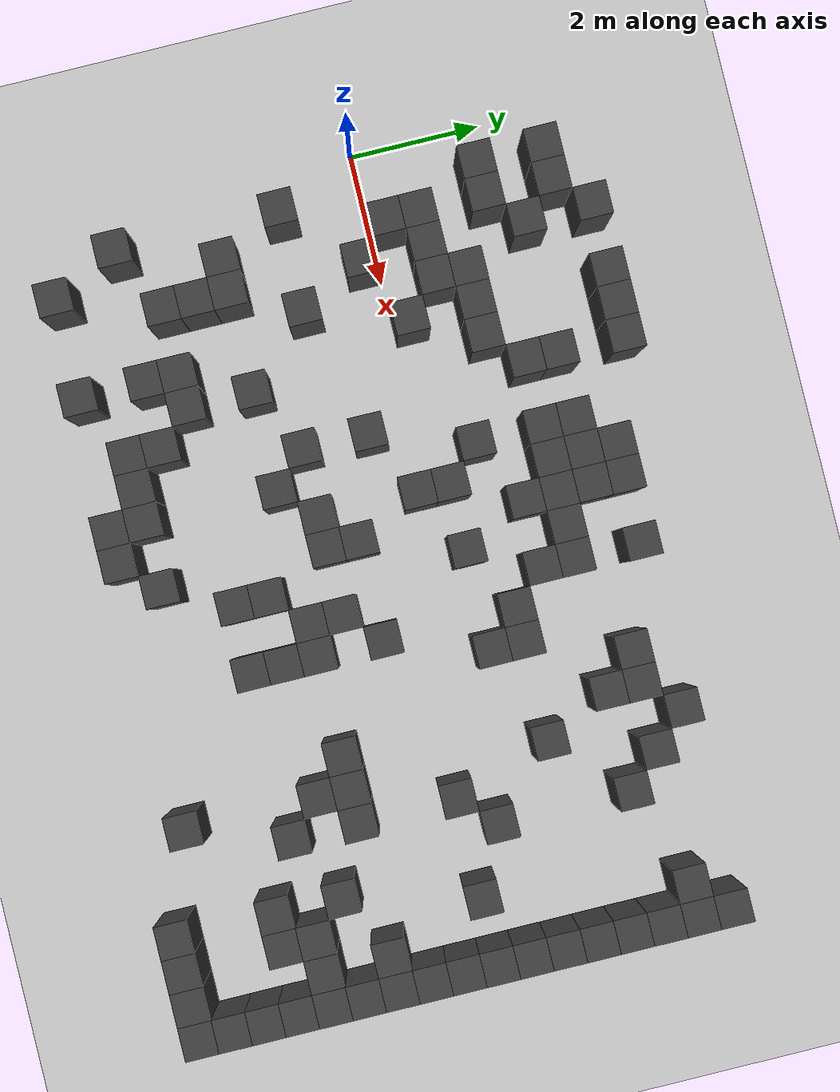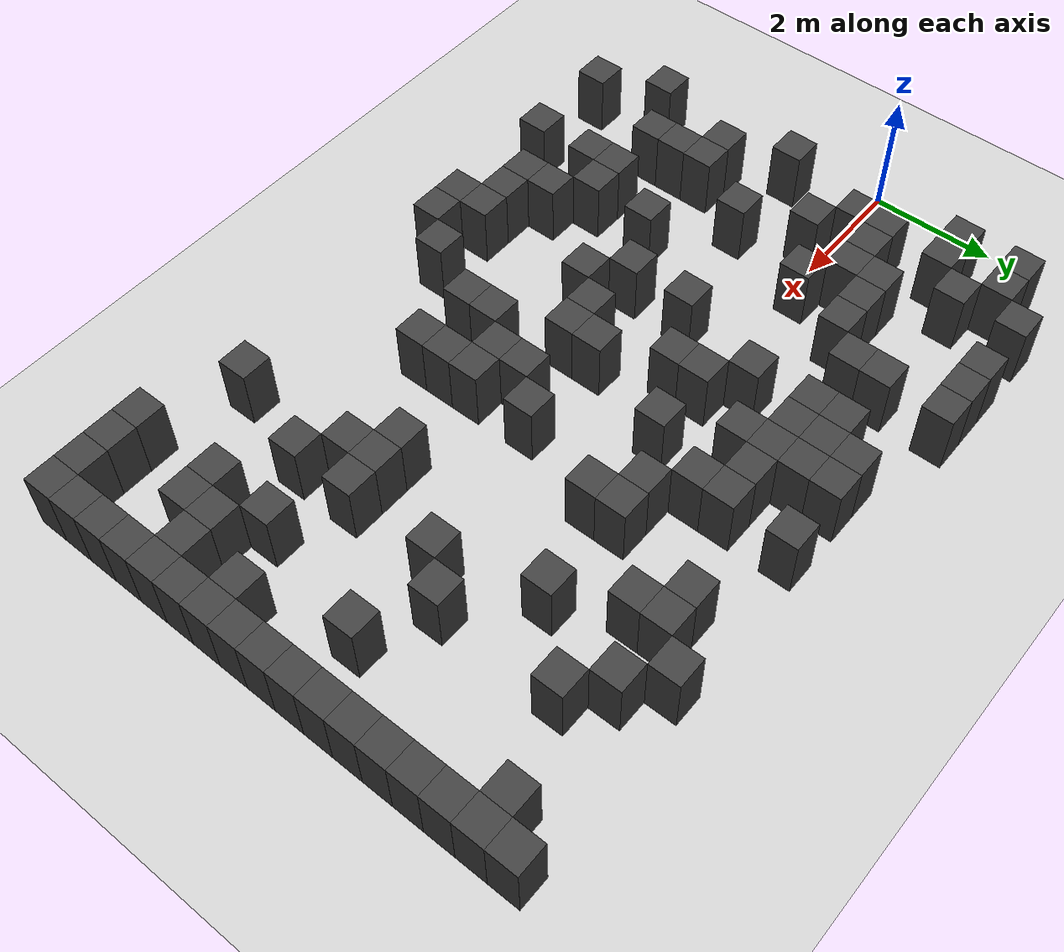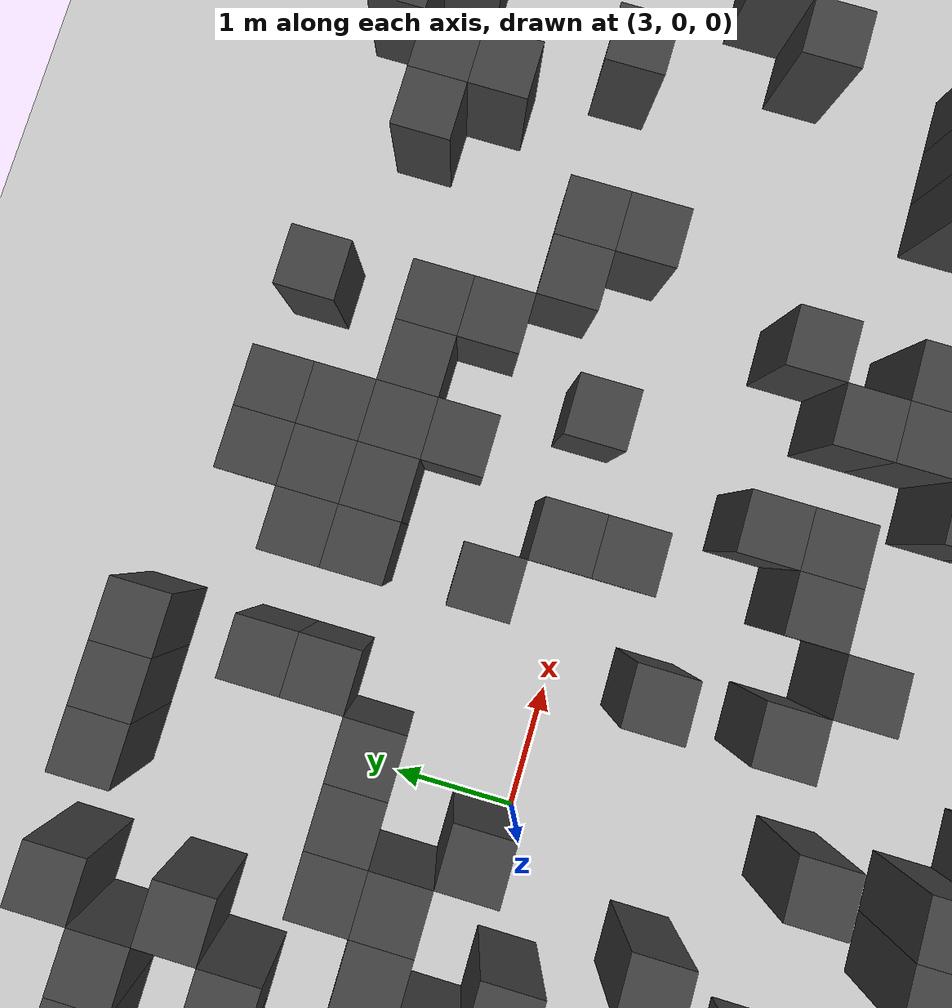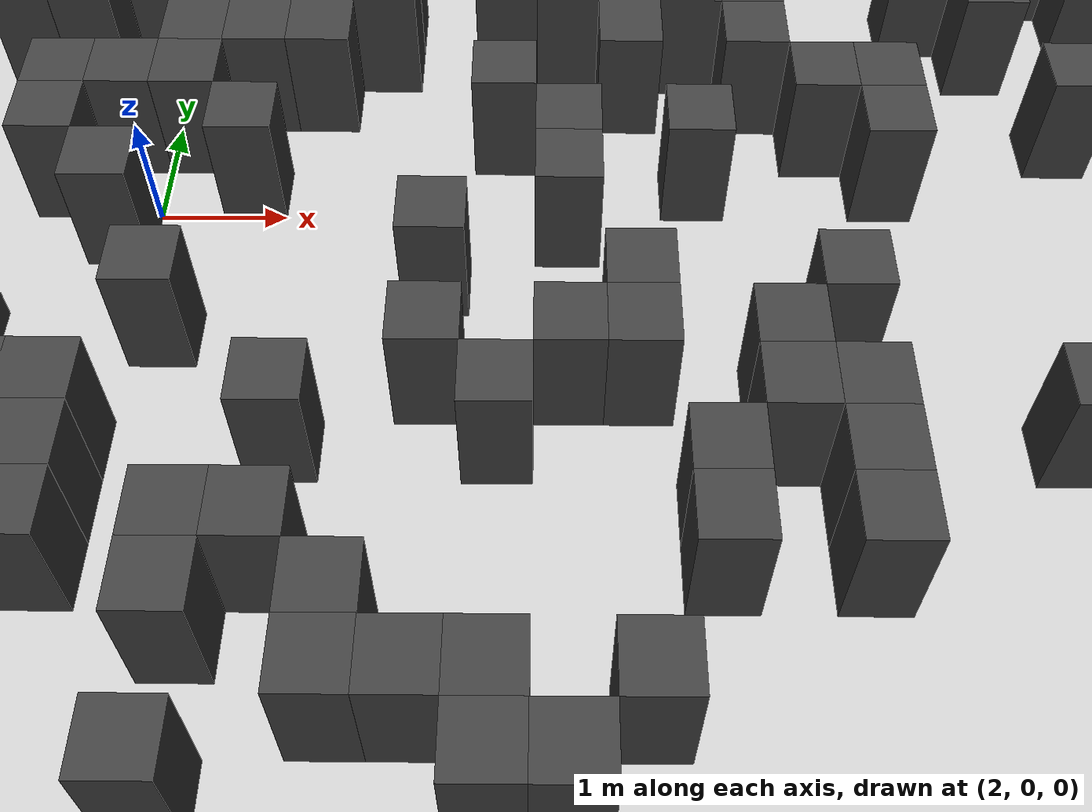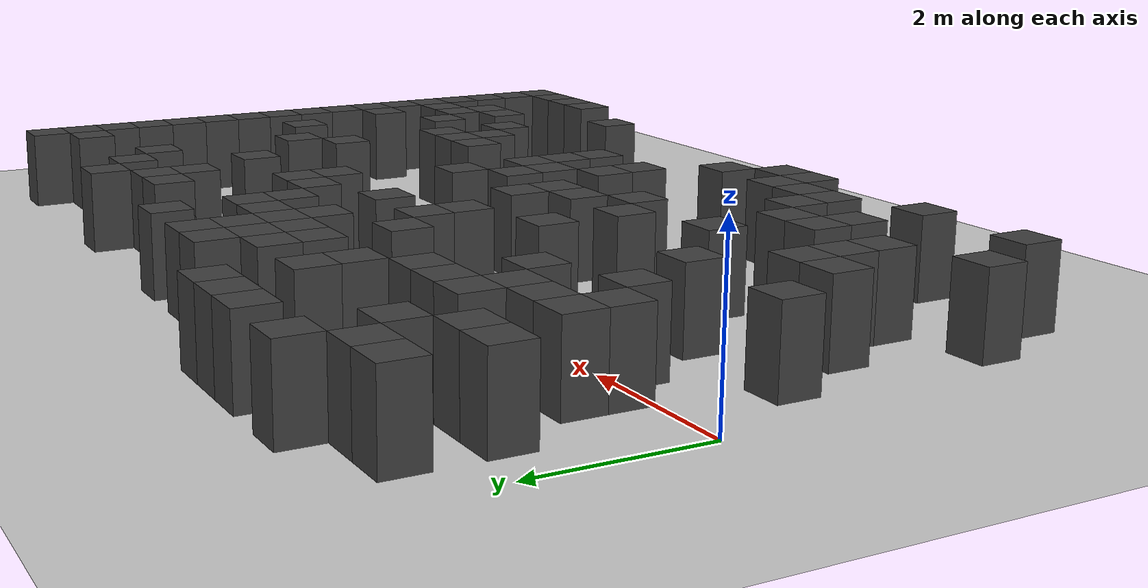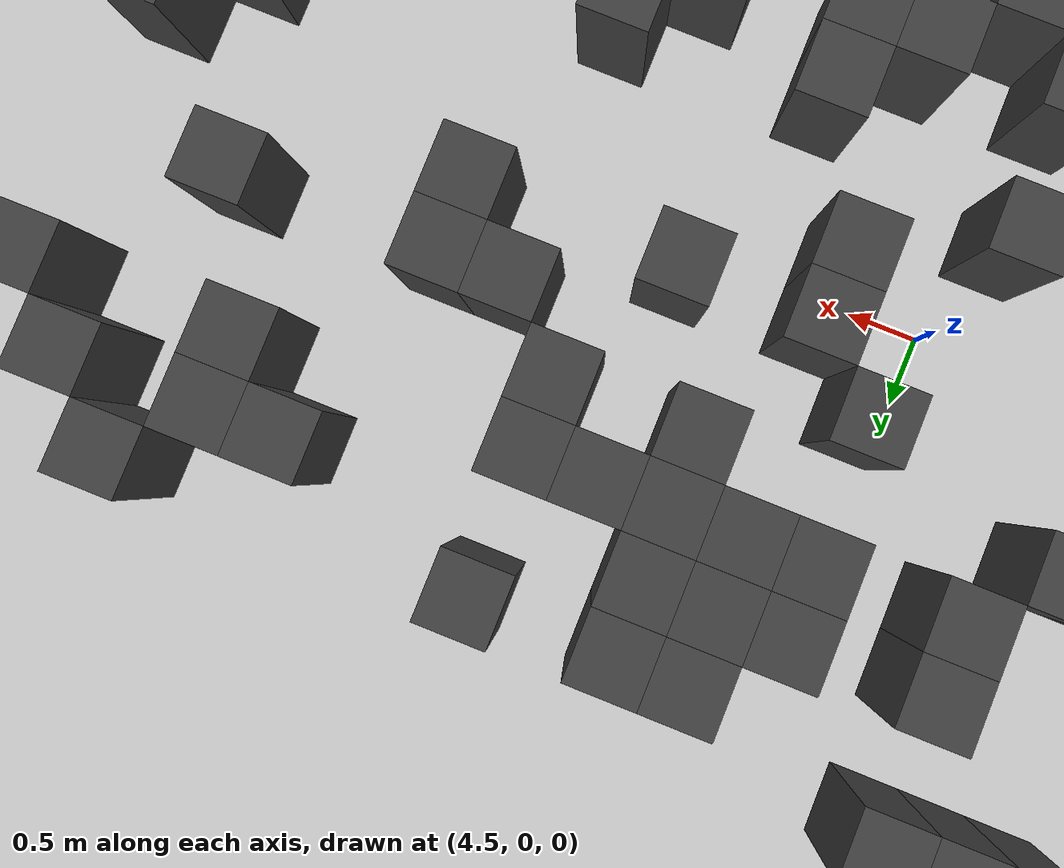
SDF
<sdf version="1.7">
 <world name="map_4581">
  <model name="ground_plane">
   <static>true</static>
   <link name="link">
    <collision name="collision">
     <geometry><plane><normal>0 0 1</normal><size>200 200</size></plane></geometry>
    </collision>
    <visual name="visual">
     <geometry><plane><normal>0 0 1</normal><size>200 200</size></plane></geometry>
     <material><ambient>0.8 0.8 0.8 1</ambient><diffuse>0.8 0.8 0.8 1</diffuse></material>
    </visual>
   </link>
  </model>
  <model name="maze_environment">
   <static>true</static>
   <link name="wall_261">
    <pose>1.750 3.250 0.500 0 0 0</pose>
    <collision name="col"><geometry><box><size>0.5 0.5 1.0</size></box></geometry></collision>
    <visual name="vis">
     <geometry><box><size>0.5 0.5 1.0</size></box></geometry>
     <material><ambient>0.15 0.15 0.15 1</ambient><diffuse>0.25 0.25 0.25 1</diffuse></material>
    </visual>
   </link>
   <link name="wall_262">
    <pose>2.750 3.250 0.500 0 0 0</pose>
    <collision name="col"><geometry><box><size>0.5 0.5 1.0</size></box></geometry></collision>
    <visual name="vis">
     <geometry><box><size>0.5 0.5 1.0</size></box></geometry>
     <material><ambient>0.15 0.15 0.15 1</ambient><diffuse>0.25 0.25 0.25 1</diffuse></material>
    </visual>
   </link>
   <link name="wall_263">
    <pose>3.250 3.250 0.500 0 0 0</pose>
    <collision name="col"><geometry><box><size>0.5 0.5 1.0</size></box></geometry></collision>
    <visual name="vis">
     <geometry><box><size>0.5 0.5 1.0</size></box></geometry>
     <material><ambient>0.15 0.15 0.15 1</ambient><diffuse>0.25 0.25 0.25 1</diffuse></material>
    </visual>
   </link>
   <link name="wall_264">
    <pose>3.750 3.250 0.500 0 0 0</pose>
    <collision name="col"><geometry><box><size>0.5 0.5 1.0</size></box></geometry></collision>
    <visual name="vis">
     <geometry><box><size>0.5 0.5 1.0</size></box></geometry>
     <material><ambient>0.15 0.15 0.15 1</ambient><diffuse>0.25 0.25 0.25 1</diffuse></material>
    </visual>
   </link>
   <link name="wall_278">
    <pose>0.750 2.750 0.500 0 0 0</pose>
    <collision name="col"><geometry><box><size>0.5 0.5 1.0</size></box></geometry></collision>
    <visual name="vis">
     <geometry><box><size>0.5 0.5 1.0</size></box></geometry>
     <material><ambient>0.15 0.15 0.15 1</ambient><diffuse>0.25 0.25 0.25 1</diffuse></material>
    </visual>
   </link>
   <link name="wall_279">
    <pose>1.250 2.750 0.500 0 0 0</pose>
    <collision name="col"><geometry><box><size>0.5 0.5 1.0</size></box></geometry></collision>
    <visual name="vis">
     <geometry><box><size>0.5 0.5 1.0</size></box></geometry>
     <material><ambient>0.15 0.15 0.15 1</ambient><diffuse>0.25 0.25 0.25 1</diffuse></material>
    </visual>
   </link>
   <link name="wall_280">
    <pose>5.250 2.750 0.500 0 0 0</pose>
    <collision name="col"><geometry><box><size>0.5 0.5 1.0</size></box></geometry></collision>
    <visual name="vis">
     <geometry><box><size>0.5 0.5 1.0</size></box></geometry>
     <material><ambient>0.15 0.15 0.15 1</ambient><diffuse>0.25 0.25 0.25 1</diffuse></material>
    </visual>
   </link>
   <link name="wall_281">
    <pose>5.750 2.750 0.500 0 0 0</pose>
    <collision name="col"><geometry><box><size>0.5 0.5 1.0</size></box></geometry></collision>
    <visual name="vis">
     <geometry><box><size>0.5 0.5 1.0</size></box></geometry>
     <material><ambient>0.15 0.15 0.15 1</ambient><diffuse>0.25 0.25 0.25 1</diffuse></material>
    </visual>
   </link>
   <link name="wall_282">
    <pose>6.750 2.750 0.500 0 0 0</pose>
    <collision name="col"><geometry><box><size>0.5 0.5 1.0</size></box></geometry></collision>
    <visual name="vis">
     <geometry><box><size>0.5 0.5 1.0</size></box></geometry>
     <material><ambient>0.15 0.15 0.15 1</ambient><diffuse>0.25 0.25 0.25 1</diffuse></material>
    </visual>
   </link>
   <link name="wall_283">
    <pose>9.250 2.750 0.500 0 0 0</pose>
    <collision name="col"><geometry><box><size>0.5 0.5 1.0</size></box></geometry></collision>
    <visual name="vis">
     <geometry><box><size>0.5 0.5 1.0</size></box></geometry>
     <material><ambient>0.15 0.15 0.15 1</ambient><diffuse>0.25 0.25 0.25 1</diffuse></material>
    </visual>
   </link>
   <link name="wall_284">
    <pose>12.250 2.750 0.500 0 0 0</pose>
    <collision name="col"><geometry><box><size>0.5 0.5 1.0</size></box></geometry></collision>
    <visual name="vis">
     <geometry><box><size>0.5 0.5 1.0</size></box></geometry>
     <material><ambient>0.15 0.15 0.15 1</ambient><diffuse>0.25 0.25 0.25 1</diffuse></material>
    </visual>
   </link>
   <link name="wall_288">
    <pose>1.750 2.250 0.500 0 0 0</pose>
    <collision name="col"><geometry><box><size>0.5 0.5 1.0</size></box></geometry></collision>
    <visual name="vis">
     <geometry><box><size>0.5 0.5 1.0</size></box></geometry>
     <material><ambient>0.15 0.15 0.15 1</ambient><diffuse>0.25 0.25 0.25 1</diffuse></material>
    </visual>
   </link>
   <link name="wall_289">
    <pose>3.750 2.250 0.500 0 0 0</pose>
    <collision name="col"><geometry><box><size>0.5 0.5 1.0</size></box></geometry></collision>
    <visual name="vis">
     <geometry><box><size>0.5 0.5 1.0</size></box></geometry>
     <material><ambient>0.15 0.15 0.15 1</ambient><diffuse>0.25 0.25 0.25 1</diffuse></material>
    </visual>
   </link>
   <link name="wall_290">
    <pose>4.750 2.250 0.500 0 0 0</pose>
    <collision name="col"><geometry><box><size>0.5 0.5 1.0</size></box></geometry></collision>
    <visual name="vis">
     <geometry><box><size>0.5 0.5 1.0</size></box></geometry>
     <material><ambient>0.15 0.15 0.15 1</ambient><diffuse>0.25 0.25 0.25 1</diffuse></material>
    </visual>
   </link>
   <link name="wall_291">
    <pose>5.250 2.250 0.500 0 0 0</pose>
    <collision name="col"><geometry><box><size>0.5 0.5 1.0</size></box></geometry></collision>
    <visual name="vis">
     <geometry><box><size>0.5 0.5 1.0</size></box></geometry>
     <material><ambient>0.15 0.15 0.15 1</ambient><diffuse>0.25 0.25 0.25 1</diffuse></material>
    </visual>
   </link>
   <link name="wall_292">
    <pose>5.750 2.250 0.500 0 0 0</pose>
    <collision name="col"><geometry><box><size>0.5 0.5 1.0</size></box></geometry></collision>
    <visual name="vis">
     <geometry><box><size>0.5 0.5 1.0</size></box></geometry>
     <material><ambient>0.15 0.15 0.15 1</ambient><diffuse>0.25 0.25 0.25 1</diffuse></material>
    </visual>
   </link>
   <link name="wall_293">
    <pose>8.250 2.250 0.500 0 0 0</pose>
    <collision name="col"><geometry><box><size>0.5 0.5 1.0</size></box></geometry></collision>
    <visual name="vis">
     <geometry><box><size>0.5 0.5 1.0</size></box></geometry>
     <material><ambient>0.15 0.15 0.15 1</ambient><diffuse>0.25 0.25 0.25 1</diffuse></material>
    </visual>
   </link>
   <link name="wall_294">
    <pose>8.750 2.250 0.500 0 0 0</pose>
    <collision name="col"><geometry><box><size>0.5 0.5 1.0</size></box></geometry></collision>
    <visual name="vis">
     <geometry><box><size>0.5 0.5 1.0</size></box></geometry>
     <material><ambient>0.15 0.15 0.15 1</ambient><diffuse>0.25 0.25 0.25 1</diffuse></material>
    </visual>
   </link>
   <link name="wall_295">
    <pose>9.750 2.250 0.500 0 0 0</pose>
    <collision name="col"><geometry><box><size>0.5 0.5 1.0</size></box></geometry></collision>
    <visual name="vis">
     <geometry><box><size>0.5 0.5 1.0</size></box></geometry>
     <material><ambient>0.15 0.15 0.15 1</ambient><diffuse>0.25 0.25 0.25 1</diffuse></material>
    </visual>
   </link>
   <link name="wall_296">
    <pose>11.750 2.250 0.500 0 0 0</pose>
    <collision name="col"><geometry><box><size>0.5 0.5 1.0</size></box></geometry></collision>
    <visual name="vis">
     <geometry><box><size>0.5 0.5 1.0</size></box></geometry>
     <material><ambient>0.15 0.15 0.15 1</ambient><diffuse>0.25 0.25 0.25 1</diffuse></material>
    </visual>
   </link>
   <link name="wall_297">
    <pose>12.250 2.250 0.500 0 0 0</pose>
    <collision name="col"><geometry><box><size>0.5 0.5 1.0</size></box></geometry></collision>
    <visual name="vis">
     <geometry><box><size>0.5 0.5 1.0</size></box></geometry>
     <material><ambient>0.15 0.15 0.15 1</ambient><diffuse>0.25 0.25 0.25 1</diffuse></material>
    </visual>
   </link>
   <link name="wall_305">
    <pose>0.750 1.750 0.500 0 0 0</pose>
    <collision name="col"><geometry><box><size>0.5 0.5 1.0</size></box></geometry></collision>
    <visual name="vis">
     <geometry><box><size>0.5 0.5 1.0</size></box></geometry>
     <material><ambient>0.15 0.15 0.15 1</ambient><diffuse>0.25 0.25 0.25 1</diffuse></material>
    </visual>
   </link>
   <link name="wall_306">
    <pose>1.250 1.750 0.500 0 0 0</pose>
    <collision name="col"><geometry><box><size>0.5 0.5 1.0</size></box></geometry></collision>
    <visual name="vis">
     <geometry><box><size>0.5 0.5 1.0</size></box></geometry>
     <material><ambient>0.15 0.15 0.15 1</ambient><diffuse>0.25 0.25 0.25 1</diffuse></material>
    </visual>
   </link>
   <link name="wall_307">
    <pose>3.750 1.750 0.500 0 0 0</pose>
    <collision name="col"><geometry><box><size>0.5 0.5 1.0</size></box></geometry></collision>
    <visual name="vis">
     <geometry><box><size>0.5 0.5 1.0</size></box></geometry>
     <material><ambient>0.15 0.15 0.15 1</ambient><diffuse>0.25 0.25 0.25 1</diffuse></material>
    </visual>
   </link>
   <link name="wall_308">
    <pose>4.750 1.750 0.500 0 0 0</pose>
    <collision name="col"><geometry><box><size>0.5 0.5 1.0</size></box></geometry></collision>
    <visual name="vis">
     <geometry><box><size>0.5 0.5 1.0</size></box></geometry>
     <material><ambient>0.15 0.15 0.15 1</ambient><diffuse>0.25 0.25 0.25 1</diffuse></material>
    </visual>
   </link>
   <link name="wall_309">
    <pose>5.250 1.750 0.500 0 0 0</pose>
    <collision name="col"><geometry><box><size>0.5 0.5 1.0</size></box></geometry></collision>
    <visual name="vis">
     <geometry><box><size>0.5 0.5 1.0</size></box></geometry>
     <material><ambient>0.15 0.15 0.15 1</ambient><diffuse>0.25 0.25 0.25 1</diffuse></material>
    </visual>
   </link>
   <link name="wall_310">
    <pose>5.750 1.750 0.500 0 0 0</pose>
    <collision name="col"><geometry><box><size>0.5 0.5 1.0</size></box></geometry></collision>
    <visual name="vis">
     <geometry><box><size>0.5 0.5 1.0</size></box></geometry>
     <material><ambient>0.15 0.15 0.15 1</ambient><diffuse>0.25 0.25 0.25 1</diffuse></material>
    </visual>
   </link>
   <link name="wall_311">
    <pose>6.250 1.750 0.500 0 0 0</pose>
    <collision name="col"><geometry><box><size>0.5 0.5 1.0</size></box></geometry></collision>
    <visual name="vis">
     <geometry><box><size>0.5 0.5 1.0</size></box></geometry>
     <material><ambient>0.15 0.15 0.15 1</ambient><diffuse>0.25 0.25 0.25 1</diffuse></material>
    </visual>
   </link>
   <link name="wall_312">
    <pose>6.750 1.750 0.500 0 0 0</pose>
    <collision name="col"><geometry><box><size>0.5 0.5 1.0</size></box></geometry></collision>
    <visual name="vis">
     <geometry><box><size>0.5 0.5 1.0</size></box></geometry>
     <material><ambient>0.15 0.15 0.15 1</ambient><diffuse>0.25 0.25 0.25 1</diffuse></material>
    </visual>
   </link>
   <link name="wall_313">
    <pose>8.750 1.750 0.500 0 0 0</pose>
    <collision name="col"><geometry><box><size>0.5 0.5 1.0</size></box></geometry></collision>
    <visual name="vis">
     <geometry><box><size>0.5 0.5 1.0</size></box></geometry>
     <material><ambient>0.15 0.15 0.15 1</ambient><diffuse>0.25 0.25 0.25 1</diffuse></material>
    </visual>
   </link>
   <link name="wall_314">
    <pose>10.250 1.750 0.500 0 0 0</pose>
    <collision name="col"><geometry><box><size>0.5 0.5 1.0</size></box></geometry></collision>
    <visual name="vis">
     <geometry><box><size>0.5 0.5 1.0</size></box></geometry>
     <material><ambient>0.15 0.15 0.15 1</ambient><diffuse>0.25 0.25 0.25 1</diffuse></material>
    </visual>
   </link>
   <link name="wall_315">
    <pose>12.250 1.750 0.500 0 0 0</pose>
    <collision name="col"><geometry><box><size>0.5 0.5 1.0</size></box></geometry></collision>
    <visual name="vis">
     <geometry><box><size>0.5 0.5 1.0</size></box></geometry>
     <material><ambient>0.15 0.15 0.15 1</ambient><diffuse>0.25 0.25 0.25 1</diffuse></material>
    </visual>
   </link>
   <link name="wall_322">
    <pose>2.250 1.250 0.500 0 0 0</pose>
    <collision name="col"><geometry><box><size>0.5 0.5 1.0</size></box></geometry></collision>
    <visual name="vis">
     <geometry><box><size>0.5 0.5 1.0</size></box></geometry>
     <material><ambient>0.15 0.15 0.15 1</ambient><diffuse>0.25 0.25 0.25 1</diffuse></material>
    </visual>
   </link>
   <link name="wall_323">
    <pose>2.750 1.250 0.500 0 0 0</pose>
    <collision name="col"><geometry><box><size>0.5 0.5 1.0</size></box></geometry></collision>
    <visual name="vis">
     <geometry><box><size>0.5 0.5 1.0</size></box></geometry>
     <material><ambient>0.15 0.15 0.15 1</ambient><diffuse>0.25 0.25 0.25 1</diffuse></material>
    </visual>
   </link>
   <link name="wall_324">
    <pose>3.250 1.250 0.500 0 0 0</pose>
    <collision name="col"><geometry><box><size>0.5 0.5 1.0</size></box></geometry></collision>
    <visual name="vis">
     <geometry><box><size>0.5 0.5 1.0</size></box></geometry>
     <material><ambient>0.15 0.15 0.15 1</ambient><diffuse>0.25 0.25 0.25 1</diffuse></material>
    </visual>
   </link>
   <link name="wall_325">
    <pose>5.750 1.250 0.500 0 0 0</pose>
    <collision name="col"><geometry><box><size>0.5 0.5 1.0</size></box></geometry></collision>
    <visual name="vis">
     <geometry><box><size>0.5 0.5 1.0</size></box></geometry>
     <material><ambient>0.15 0.15 0.15 1</ambient><diffuse>0.25 0.25 0.25 1</diffuse></material>
    </visual>
   </link>
   <link name="wall_326">
    <pose>6.750 1.250 0.500 0 0 0</pose>
    <collision name="col"><geometry><box><size>0.5 0.5 1.0</size></box></geometry></collision>
    <visual name="vis">
     <geometry><box><size>0.5 0.5 1.0</size></box></geometry>
     <material><ambient>0.15 0.15 0.15 1</ambient><diffuse>0.25 0.25 0.25 1</diffuse></material>
    </visual>
   </link>
   <link name="wall_327">
    <pose>12.250 1.250 0.500 0 0 0</pose>
    <collision name="col"><geometry><box><size>0.5 0.5 1.0</size></box></geometry></collision>
    <visual name="vis">
     <geometry><box><size>0.5 0.5 1.0</size></box></geometry>
     <material><ambient>0.15 0.15 0.15 1</ambient><diffuse>0.25 0.25 0.25 1</diffuse></material>
    </visual>
   </link>
   <link name="wall_332">
    <pose>1.250 0.750 0.500 0 0 0</pose>
    <collision name="col"><geometry><box><size>0.5 0.5 1.0</size></box></geometry></collision>
    <visual name="vis">
     <geometry><box><size>0.5 0.5 1.0</size></box></geometry>
     <material><ambient>0.15 0.15 0.15 1</ambient><diffuse>0.25 0.25 0.25 1</diffuse></material>
    </visual>
   </link>
   <link name="wall_333">
    <pose>1.750 0.750 0.500 0 0 0</pose>
    <collision name="col"><geometry><box><size>0.5 0.5 1.0</size></box></geometry></collision>
    <visual name="vis">
     <geometry><box><size>0.5 0.5 1.0</size></box></geometry>
     <material><ambient>0.15 0.15 0.15 1</ambient><diffuse>0.25 0.25 0.25 1</diffuse></material>
    </visual>
   </link>
   <link name="wall_334">
    <pose>2.250 0.750 0.500 0 0 0</pose>
    <collision name="col"><geometry><box><size>0.5 0.5 1.0</size></box></geometry></collision>
    <visual name="vis">
     <geometry><box><size>0.5 0.5 1.0</size></box></geometry>
     <material><ambient>0.15 0.15 0.15 1</ambient><diffuse>0.25 0.25 0.25 1</diffuse></material>
    </visual>
   </link>
   <link name="wall_335">
    <pose>4.750 0.750 0.500 0 0 0</pose>
    <collision name="col"><geometry><box><size>0.5 0.5 1.0</size></box></geometry></collision>
    <visual name="vis">
     <geometry><box><size>0.5 0.5 1.0</size></box></geometry>
     <material><ambient>0.15 0.15 0.15 1</ambient><diffuse>0.25 0.25 0.25 1</diffuse></material>
    </visual>
   </link>
   <link name="wall_336">
    <pose>7.250 0.750 0.500 0 0 0</pose>
    <collision name="col"><geometry><box><size>0.5 0.5 1.0</size></box></geometry></collision>
    <visual name="vis">
     <geometry><box><size>0.5 0.5 1.0</size></box></geometry>
     <material><ambient>0.15 0.15 0.15 1</ambient><diffuse>0.25 0.25 0.25 1</diffuse></material>
    </visual>
   </link>
   <link name="wall_337">
    <pose>7.750 0.750 0.500 0 0 0</pose>
    <collision name="col"><geometry><box><size>0.5 0.5 1.0</size></box></geometry></collision>
    <visual name="vis">
     <geometry><box><size>0.5 0.5 1.0</size></box></geometry>
     <material><ambient>0.15 0.15 0.15 1</ambient><diffuse>0.25 0.25 0.25 1</diffuse></material>
    </visual>
   </link>
   <link name="wall_338">
    <pose>9.250 0.750 0.500 0 0 0</pose>
    <collision name="col"><geometry><box><size>0.5 0.5 1.0</size></box></geometry></collision>
    <visual name="vis">
     <geometry><box><size>0.5 0.5 1.0</size></box></geometry>
     <material><ambient>0.15 0.15 0.15 1</ambient><diffuse>0.25 0.25 0.25 1</diffuse></material>
    </visual>
   </link>
   <link name="wall_339">
    <pose>12.250 0.750 0.500 0 0 0</pose>
    <collision name="col"><geometry><box><size>0.5 0.5 1.0</size></box></geometry></collision>
    <visual name="vis">
     <geometry><box><size>0.5 0.5 1.0</size></box></geometry>
     <material><ambient>0.15 0.15 0.15 1</ambient><diffuse>0.25 0.25 0.25 1</diffuse></material>
    </visual>
   </link>
   <link name="wall_345">
    <pose>1.250 0.250 0.500 0 0 0</pose>
    <collision name="col"><geometry><box><size>0.5 0.5 1.0</size></box></geometry></collision>
    <visual name="vis">
     <geometry><box><size>0.5 0.5 1.0</size></box></geometry>
     <material><ambient>0.15 0.15 0.15 1</ambient><diffuse>0.25 0.25 0.25 1</diffuse></material>
    </visual>
   </link>
   <link name="wall_346">
    <pose>2.750 0.250 0.500 0 0 0</pose>
    <collision name="col"><geometry><box><size>0.5 0.5 1.0</size></box></geometry></collision>
    <visual name="vis">
     <geometry><box><size>0.5 0.5 1.0</size></box></geometry>
     <material><ambient>0.15 0.15 0.15 1</ambient><diffuse>0.25 0.25 0.25 1</diffuse></material>
    </visual>
   </link>
   <link name="wall_347">
    <pose>5.250 0.250 0.500 0 0 0</pose>
    <collision name="col"><geometry><box><size>0.5 0.5 1.0</size></box></geometry></collision>
    <visual name="vis">
     <geometry><box><size>0.5 0.5 1.0</size></box></geometry>
     <material><ambient>0.15 0.15 0.15 1</ambient><diffuse>0.25 0.25 0.25 1</diffuse></material>
    </visual>
   </link>
   <link name="wall_348">
    <pose>6.250 0.250 0.500 0 0 0</pose>
    <collision name="col"><geometry><box><size>0.5 0.5 1.0</size></box></geometry></collision>
    <visual name="vis">
     <geometry><box><size>0.5 0.5 1.0</size></box></geometry>
     <material><ambient>0.15 0.15 0.15 1</ambient><diffuse>0.25 0.25 0.25 1</diffuse></material>
    </visual>
   </link>
   <link name="wall_349">
    <pose>7.750 0.250 0.500 0 0 0</pose>
    <collision name="col"><geometry><box><size>0.5 0.5 1.0</size></box></geometry></collision>
    <visual name="vis">
     <geometry><box><size>0.5 0.5 1.0</size></box></geometry>
     <material><ambient>0.15 0.15 0.15 1</ambient><diffuse>0.25 0.25 0.25 1</diffuse></material>
    </visual>
   </link>
   <link name="wall_350">
    <pose>12.250 0.250 0.500 0 0 0</pose>
    <collision name="col"><geometry><box><size>0.5 0.5 1.0</size></box></geometry></collision>
    <visual name="vis">
     <geometry><box><size>0.5 0.5 1.0</size></box></geometry>
     <material><ambient>0.15 0.15 0.15 1</ambient><diffuse>0.25 0.25 0.25 1</diffuse></material>
    </visual>
   </link>
   <link name="wall_357">
    <pose>1.750 -0.250 0.500 0 0 0</pose>
    <collision name="col"><geometry><box><size>0.5 0.5 1.0</size></box></geometry></collision>
    <visual name="vis">
     <geometry><box><size>0.5 0.5 1.0</size></box></geometry>
     <material><ambient>0.15 0.15 0.15 1</ambient><diffuse>0.25 0.25 0.25 1</diffuse></material>
    </visual>
   </link>
   <link name="wall_358">
    <pose>5.250 -0.250 0.500 0 0 0</pose>
    <collision name="col"><geometry><box><size>0.5 0.5 1.0</size></box></geometry></collision>
    <visual name="vis">
     <geometry><box><size>0.5 0.5 1.0</size></box></geometry>
     <material><ambient>0.15 0.15 0.15 1</ambient><diffuse>0.25 0.25 0.25 1</diffuse></material>
    </visual>
   </link>
   <link name="wall_359">
    <pose>10.250 -0.250 0.500 0 0 0</pose>
    <collision name="col"><geometry><box><size>0.5 0.5 1.0</size></box></geometry></collision>
    <visual name="vis">
     <geometry><box><size>0.5 0.5 1.0</size></box></geometry>
     <material><ambient>0.15 0.15 0.15 1</ambient><diffuse>0.25 0.25 0.25 1</diffuse></material>
    </visual>
   </link>
   <link name="wall_360">
    <pose>12.250 -0.250 0.500 0 0 0</pose>
    <collision name="col"><geometry><box><size>0.5 0.5 1.0</size></box></geometry></collision>
    <visual name="vis">
     <geometry><box><size>0.5 0.5 1.0</size></box></geometry>
     <material><ambient>0.15 0.15 0.15 1</ambient><diffuse>0.25 0.25 0.25 1</diffuse></material>
    </visual>
   </link>
   <link name="wall_366">
    <pose>4.250 -0.750 0.500 0 0 0</pose>
    <collision name="col"><geometry><box><size>0.5 0.5 1.0</size></box></geometry></collision>
    <visual name="vis">
     <geometry><box><size>0.5 0.5 1.0</size></box></geometry>
     <material><ambient>0.15 0.15 0.15 1</ambient><diffuse>0.25 0.25 0.25 1</diffuse></material>
    </visual>
   </link>
   <link name="wall_367">
    <pose>9.750 -0.750 0.500 0 0 0</pose>
    <collision name="col"><geometry><box><size>0.5 0.5 1.0</size></box></geometry></collision>
    <visual name="vis">
     <geometry><box><size>0.5 0.5 1.0</size></box></geometry>
     <material><ambient>0.15 0.15 0.15 1</ambient><diffuse>0.25 0.25 0.25 1</diffuse></material>
    </visual>
   </link>
   <link name="wall_368">
    <pose>11.250 -0.750 0.500 0 0 0</pose>
    <collision name="col"><geometry><box><size>0.5 0.5 1.0</size></box></geometry></collision>
    <visual name="vis">
     <geometry><box><size>0.5 0.5 1.0</size></box></geometry>
     <material><ambient>0.15 0.15 0.15 1</ambient><diffuse>0.25 0.25 0.25 1</diffuse></material>
    </visual>
   </link>
   <link name="wall_369">
    <pose>12.250 -0.750 0.500 0 0 0</pose>
    <collision name="col"><geometry><box><size>0.5 0.5 1.0</size></box></geometry></collision>
    <visual name="vis">
     <geometry><box><size>0.5 0.5 1.0</size></box></geometry>
     <material><ambient>0.15 0.15 0.15 1</ambient><diffuse>0.25 0.25 0.25 1</diffuse></material>
    </visual>
   </link>
   <link name="wall_377">
    <pose>0.750 -1.250 0.500 0 0 0</pose>
    <collision name="col"><geometry><box><size>0.5 0.5 1.0</size></box></geometry></collision>
    <visual name="vis">
     <geometry><box><size>0.5 0.5 1.0</size></box></geometry>
     <material><ambient>0.15 0.15 0.15 1</ambient><diffuse>0.25 0.25 0.25 1</diffuse></material>
    </visual>
   </link>
   <link name="wall_378">
    <pose>2.250 -1.250 0.500 0 0 0</pose>
    <collision name="col"><geometry><box><size>0.5 0.5 1.0</size></box></geometry></collision>
    <visual name="vis">
     <geometry><box><size>0.5 0.5 1.0</size></box></geometry>
     <material><ambient>0.15 0.15 0.15 1</ambient><diffuse>0.25 0.25 0.25 1</diffuse></material>
    </visual>
   </link>
   <link name="wall_379">
    <pose>5.750 -1.250 0.500 0 0 0</pose>
    <collision name="col"><geometry><box><size>0.5 0.5 1.0</size></box></geometry></collision>
    <visual name="vis">
     <geometry><box><size>0.5 0.5 1.0</size></box></geometry>
     <material><ambient>0.15 0.15 0.15 1</ambient><diffuse>0.25 0.25 0.25 1</diffuse></material>
    </visual>
   </link>
   <link name="wall_380">
    <pose>7.250 -1.250 0.500 0 0 0</pose>
    <collision name="col"><geometry><box><size>0.5 0.5 1.0</size></box></geometry></collision>
    <visual name="vis">
     <geometry><box><size>0.5 0.5 1.0</size></box></geometry>
     <material><ambient>0.15 0.15 0.15 1</ambient><diffuse>0.25 0.25 0.25 1</diffuse></material>
    </visual>
   </link>
   <link name="wall_381">
    <pose>12.250 -1.250 0.500 0 0 0</pose>
    <collision name="col"><geometry><box><size>0.5 0.5 1.0</size></box></geometry></collision>
    <visual name="vis">
     <geometry><box><size>0.5 0.5 1.0</size></box></geometry>
     <material><ambient>0.15 0.15 0.15 1</ambient><diffuse>0.25 0.25 0.25 1</diffuse></material>
    </visual>
   </link>
   <link name="wall_389">
    <pose>4.250 -1.750 0.500 0 0 0</pose>
    <collision name="col"><geometry><box><size>0.5 0.5 1.0</size></box></geometry></collision>
    <visual name="vis">
     <geometry><box><size>0.5 0.5 1.0</size></box></geometry>
     <material><ambient>0.15 0.15 0.15 1</ambient><diffuse>0.25 0.25 0.25 1</diffuse></material>
    </visual>
   </link>
   <link name="wall_390">
    <pose>5.250 -1.750 0.500 0 0 0</pose>
    <collision name="col"><geometry><box><size>0.5 0.5 1.0</size></box></geometry></collision>
    <visual name="vis">
     <geometry><box><size>0.5 0.5 1.0</size></box></geometry>
     <material><ambient>0.15 0.15 0.15 1</ambient><diffuse>0.25 0.25 0.25 1</diffuse></material>
    </visual>
   </link>
   <link name="wall_391">
    <pose>5.750 -1.750 0.500 0 0 0</pose>
    <collision name="col"><geometry><box><size>0.5 0.5 1.0</size></box></geometry></collision>
    <visual name="vis">
     <geometry><box><size>0.5 0.5 1.0</size></box></geometry>
     <material><ambient>0.15 0.15 0.15 1</ambient><diffuse>0.25 0.25 0.25 1</diffuse></material>
    </visual>
   </link>
   <link name="wall_392">
    <pose>6.750 -1.750 0.500 0 0 0</pose>
    <collision name="col"><geometry><box><size>0.5 0.5 1.0</size></box></geometry></collision>
    <visual name="vis">
     <geometry><box><size>0.5 0.5 1.0</size></box></geometry>
     <material><ambient>0.15 0.15 0.15 1</ambient><diffuse>0.25 0.25 0.25 1</diffuse></material>
    </visual>
   </link>
   <link name="wall_393">
    <pose>12.250 -1.750 0.500 0 0 0</pose>
    <collision name="col"><geometry><box><size>0.5 0.5 1.0</size></box></geometry></collision>
    <visual name="vis">
     <geometry><box><size>0.5 0.5 1.0</size></box></geometry>
     <material><ambient>0.15 0.15 0.15 1</ambient><diffuse>0.25 0.25 0.25 1</diffuse></material>
    </visual>
   </link>
   <link name="wall_403">
    <pose>1.250 -2.250 0.500 0 0 0</pose>
    <collision name="col"><geometry><box><size>0.5 0.5 1.0</size></box></geometry></collision>
    <visual name="vis">
     <geometry><box><size>0.5 0.5 1.0</size></box></geometry>
     <material><ambient>0.15 0.15 0.15 1</ambient><diffuse>0.25 0.25 0.25 1</diffuse></material>
    </visual>
   </link>
   <link name="wall_404">
    <pose>1.750 -2.250 0.500 0 0 0</pose>
    <collision name="col"><geometry><box><size>0.5 0.5 1.0</size></box></geometry></collision>
    <visual name="vis">
     <geometry><box><size>0.5 0.5 1.0</size></box></geometry>
     <material><ambient>0.15 0.15 0.15 1</ambient><diffuse>0.25 0.25 0.25 1</diffuse></material>
    </visual>
   </link>
   <link name="wall_405">
    <pose>3.250 -2.250 0.500 0 0 0</pose>
    <collision name="col"><geometry><box><size>0.5 0.5 1.0</size></box></geometry></collision>
    <visual name="vis">
     <geometry><box><size>0.5 0.5 1.0</size></box></geometry>
     <material><ambient>0.15 0.15 0.15 1</ambient><diffuse>0.25 0.25 0.25 1</diffuse></material>
    </visual>
   </link>
   <link name="wall_406">
    <pose>4.750 -2.250 0.500 0 0 0</pose>
    <collision name="col"><geometry><box><size>0.5 0.5 1.0</size></box></geometry></collision>
    <visual name="vis">
     <geometry><box><size>0.5 0.5 1.0</size></box></geometry>
     <material><ambient>0.15 0.15 0.15 1</ambient><diffuse>0.25 0.25 0.25 1</diffuse></material>
    </visual>
   </link>
   <link name="wall_407">
    <pose>6.750 -2.250 0.500 0 0 0</pose>
    <collision name="col"><geometry><box><size>0.5 0.5 1.0</size></box></geometry></collision>
    <visual name="vis">
     <geometry><box><size>0.5 0.5 1.0</size></box></geometry>
     <material><ambient>0.15 0.15 0.15 1</ambient><diffuse>0.25 0.25 0.25 1</diffuse></material>
    </visual>
   </link>
   <link name="wall_408">
    <pose>7.250 -2.250 0.500 0 0 0</pose>
    <collision name="col"><geometry><box><size>0.5 0.5 1.0</size></box></geometry></collision>
    <visual name="vis">
     <geometry><box><size>0.5 0.5 1.0</size></box></geometry>
     <material><ambient>0.15 0.15 0.15 1</ambient><diffuse>0.25 0.25 0.25 1</diffuse></material>
    </visual>
   </link>
   <link name="wall_409">
    <pose>8.750 -2.250 0.500 0 0 0</pose>
    <collision name="col"><geometry><box><size>0.5 0.5 1.0</size></box></geometry></collision>
    <visual name="vis">
     <geometry><box><size>0.5 0.5 1.0</size></box></geometry>
     <material><ambient>0.15 0.15 0.15 1</ambient><diffuse>0.25 0.25 0.25 1</diffuse></material>
    </visual>
   </link>
   <link name="wall_410">
    <pose>9.250 -2.250 0.500 0 0 0</pose>
    <collision name="col"><geometry><box><size>0.5 0.5 1.0</size></box></geometry></collision>
    <visual name="vis">
     <geometry><box><size>0.5 0.5 1.0</size></box></geometry>
     <material><ambient>0.15 0.15 0.15 1</ambient><diffuse>0.25 0.25 0.25 1</diffuse></material>
    </visual>
   </link>
   <link name="wall_411">
    <pose>9.750 -2.250 0.500 0 0 0</pose>
    <collision name="col"><geometry><box><size>0.5 0.5 1.0</size></box></geometry></collision>
    <visual name="vis">
     <geometry><box><size>0.5 0.5 1.0</size></box></geometry>
     <material><ambient>0.15 0.15 0.15 1</ambient><diffuse>0.25 0.25 0.25 1</diffuse></material>
    </visual>
   </link>
   <link name="wall_412">
    <pose>11.750 -2.250 0.500 0 0 0</pose>
    <collision name="col"><geometry><box><size>0.5 0.5 1.0</size></box></geometry></collision>
    <visual name="vis">
     <geometry><box><size>0.5 0.5 1.0</size></box></geometry>
     <material><ambient>0.15 0.15 0.15 1</ambient><diffuse>0.25 0.25 0.25 1</diffuse></material>
    </visual>
   </link>
   <link name="wall_413">
    <pose>12.250 -2.250 0.500 0 0 0</pose>
    <collision name="col"><geometry><box><size>0.5 0.5 1.0</size></box></geometry></collision>
    <visual name="vis">
     <geometry><box><size>0.5 0.5 1.0</size></box></geometry>
     <material><ambient>0.15 0.15 0.15 1</ambient><diffuse>0.25 0.25 0.25 1</diffuse></material>
    </visual>
   </link>
   <link name="wall_421">
    <pose>1.750 -2.750 0.500 0 0 0</pose>
    <collision name="col"><geometry><box><size>0.5 0.5 1.0</size></box></geometry></collision>
    <visual name="vis">
     <geometry><box><size>0.5 0.5 1.0</size></box></geometry>
     <material><ambient>0.15 0.15 0.15 1</ambient><diffuse>0.25 0.25 0.25 1</diffuse></material>
    </visual>
   </link>
   <link name="wall_422">
    <pose>6.250 -2.750 0.500 0 0 0</pose>
    <collision name="col"><geometry><box><size>0.5 0.5 1.0</size></box></geometry></collision>
    <visual name="vis">
     <geometry><box><size>0.5 0.5 1.0</size></box></geometry>
     <material><ambient>0.15 0.15 0.15 1</ambient><diffuse>0.25 0.25 0.25 1</diffuse></material>
    </visual>
   </link>
   <link name="wall_423">
    <pose>7.250 -2.750 0.500 0 0 0</pose>
    <collision name="col"><geometry><box><size>0.5 0.5 1.0</size></box></geometry></collision>
    <visual name="vis">
     <geometry><box><size>0.5 0.5 1.0</size></box></geometry>
     <material><ambient>0.15 0.15 0.15 1</ambient><diffuse>0.25 0.25 0.25 1</diffuse></material>
    </visual>
   </link>
   <link name="wall_424">
    <pose>9.250 -2.750 0.500 0 0 0</pose>
    <collision name="col"><geometry><box><size>0.5 0.5 1.0</size></box></geometry></collision>
    <visual name="vis">
     <geometry><box><size>0.5 0.5 1.0</size></box></geometry>
     <material><ambient>0.15 0.15 0.15 1</ambient><diffuse>0.25 0.25 0.25 1</diffuse></material>
    </visual>
   </link>
   <link name="wall_425">
    <pose>10.750 -2.750 0.500 0 0 0</pose>
    <collision name="col"><geometry><box><size>0.5 0.5 1.0</size></box></geometry></collision>
    <visual name="vis">
     <geometry><box><size>0.5 0.5 1.0</size></box></geometry>
     <material><ambient>0.15 0.15 0.15 1</ambient><diffuse>0.25 0.25 0.25 1</diffuse></material>
    </visual>
   </link>
   <link name="wall_426">
    <pose>12.250 -2.750 0.500 0 0 0</pose>
    <collision name="col"><geometry><box><size>0.5 0.5 1.0</size></box></geometry></collision>
    <visual name="vis">
     <geometry><box><size>0.5 0.5 1.0</size></box></geometry>
     <material><ambient>0.15 0.15 0.15 1</ambient><diffuse>0.25 0.25 0.25 1</diffuse></material>
    </visual>
   </link>
   <link name="wall_432">
    <pose>1.750 -3.250 0.500 0 0 0</pose>
    <collision name="col"><geometry><box><size>0.5 0.5 1.0</size></box></geometry></collision>
    <visual name="vis">
     <geometry><box><size>0.5 0.5 1.0</size></box></geometry>
     <material><ambient>0.15 0.15 0.15 1</ambient><diffuse>0.25 0.25 0.25 1</diffuse></material>
    </visual>
   </link>
   <link name="wall_433">
    <pose>2.750 -3.250 0.500 0 0 0</pose>
    <collision name="col"><geometry><box><size>0.5 0.5 1.0</size></box></geometry></collision>
    <visual name="vis">
     <geometry><box><size>0.5 0.5 1.0</size></box></geometry>
     <material><ambient>0.15 0.15 0.15 1</ambient><diffuse>0.25 0.25 0.25 1</diffuse></material>
    </visual>
   </link>
   <link name="wall_434">
    <pose>3.250 -3.250 0.500 0 0 0</pose>
    <collision name="col"><geometry><box><size>0.5 0.5 1.0</size></box></geometry></collision>
    <visual name="vis">
     <geometry><box><size>0.5 0.5 1.0</size></box></geometry>
     <material><ambient>0.15 0.15 0.15 1</ambient><diffuse>0.25 0.25 0.25 1</diffuse></material>
    </visual>
   </link>
   <link name="wall_435">
    <pose>6.250 -3.250 0.500 0 0 0</pose>
    <collision name="col"><geometry><box><size>0.5 0.5 1.0</size></box></geometry></collision>
    <visual name="vis">
     <geometry><box><size>0.5 0.5 1.0</size></box></geometry>
     <material><ambient>0.15 0.15 0.15 1</ambient><diffuse>0.25 0.25 0.25 1</diffuse></material>
    </visual>
   </link>
   <link name="wall_436">
    <pose>7.250 -3.250 0.500 0 0 0</pose>
    <collision name="col"><geometry><box><size>0.5 0.5 1.0</size></box></geometry></collision>
    <visual name="vis">
     <geometry><box><size>0.5 0.5 1.0</size></box></geometry>
     <material><ambient>0.15 0.15 0.15 1</ambient><diffuse>0.25 0.25 0.25 1</diffuse></material>
    </visual>
   </link>
   <link name="wall_437">
    <pose>9.750 -3.250 0.500 0 0 0</pose>
    <collision name="col"><geometry><box><size>0.5 0.5 1.0</size></box></geometry></collision>
    <visual name="vis">
     <geometry><box><size>0.5 0.5 1.0</size></box></geometry>
     <material><ambient>0.15 0.15 0.15 1</ambient><diffuse>0.25 0.25 0.25 1</diffuse></material>
    </visual>
   </link>
   <link name="wall_438">
    <pose>11.250 -3.250 0.500 0 0 0</pose>
    <collision name="col"><geometry><box><size>0.5 0.5 1.0</size></box></geometry></collision>
    <visual name="vis">
     <geometry><box><size>0.5 0.5 1.0</size></box></geometry>
     <material><ambient>0.15 0.15 0.15 1</ambient><diffuse>0.25 0.25 0.25 1</diffuse></material>
    </visual>
   </link>
   <link name="wall_439">
    <pose>11.750 -3.250 0.500 0 0 0</pose>
    <collision name="col"><geometry><box><size>0.5 0.5 1.0</size></box></geometry></collision>
    <visual name="vis">
     <geometry><box><size>0.5 0.5 1.0</size></box></geometry>
     <material><ambient>0.15 0.15 0.15 1</ambient><diffuse>0.25 0.25 0.25 1</diffuse></material>
    </visual>
   </link>
   <link name="wall_440">
    <pose>12.250 -3.250 0.500 0 0 0</pose>
    <collision name="col"><geometry><box><size>0.5 0.5 1.0</size></box></geometry></collision>
    <visual name="vis">
     <geometry><box><size>0.5 0.5 1.0</size></box></geometry>
     <material><ambient>0.15 0.15 0.15 1</ambient><diffuse>0.25 0.25 0.25 1</diffuse></material>
    </visual>
   </link>
   <link name="wall_446">
    <pose>0.750 -3.750 0.500 0 0 0</pose>
    <collision name="col"><geometry><box><size>0.5 0.5 1.0</size></box></geometry></collision>
    <visual name="vis">
     <geometry><box><size>0.5 0.5 1.0</size></box></geometry>
     <material><ambient>0.15 0.15 0.15 1</ambient><diffuse>0.25 0.25 0.25 1</diffuse></material>
    </visual>
   </link>
   <link name="wall_447">
    <pose>2.750 -3.750 0.500 0 0 0</pose>
    <collision name="col"><geometry><box><size>0.5 0.5 1.0</size></box></geometry></collision>
    <visual name="vis">
     <geometry><box><size>0.5 0.5 1.0</size></box></geometry>
     <material><ambient>0.15 0.15 0.15 1</ambient><diffuse>0.25 0.25 0.25 1</diffuse></material>
    </visual>
   </link>
   <link name="wall_448">
    <pose>3.750 -3.750 0.500 0 0 0</pose>
    <collision name="col"><geometry><box><size>0.5 0.5 1.0</size></box></geometry></collision>
    <visual name="vis">
     <geometry><box><size>0.5 0.5 1.0</size></box></geometry>
     <material><ambient>0.15 0.15 0.15 1</ambient><diffuse>0.25 0.25 0.25 1</diffuse></material>
    </visual>
   </link>
   <link name="wall_449">
    <pose>10.750 -3.750 0.500 0 0 0</pose>
    <collision name="col"><geometry><box><size>0.5 0.5 1.0</size></box></geometry></collision>
    <visual name="vis">
     <geometry><box><size>0.5 0.5 1.0</size></box></geometry>
     <material><ambient>0.15 0.15 0.15 1</ambient><diffuse>0.25 0.25 0.25 1</diffuse></material>
    </visual>
   </link>
   <link name="wall_450">
    <pose>11.250 -3.750 0.500 0 0 0</pose>
    <collision name="col"><geometry><box><size>0.5 0.5 1.0</size></box></geometry></collision>
    <visual name="vis">
     <geometry><box><size>0.5 0.5 1.0</size></box></geometry>
     <material><ambient>0.15 0.15 0.15 1</ambient><diffuse>0.25 0.25 0.25 1</diffuse></material>
    </visual>
   </link>
   <link name="wall_451">
    <pose>12.250 -3.750 0.500 0 0 0</pose>
    <collision name="col"><geometry><box><size>0.5 0.5 1.0</size></box></geometry></collision>
    <visual name="vis">
     <geometry><box><size>0.5 0.5 1.0</size></box></geometry>
     <material><ambient>0.15 0.15 0.15 1</ambient><diffuse>0.25 0.25 0.25 1</diffuse></material>
    </visual>
   </link>
   <link name="wall_461">
    <pose>3.750 -4.250 0.500 0 0 0</pose>
    <collision name="col"><geometry><box><size>0.5 0.5 1.0</size></box></geometry></collision>
    <visual name="vis">
     <geometry><box><size>0.5 0.5 1.0</size></box></geometry>
     <material><ambient>0.15 0.15 0.15 1</ambient><diffuse>0.25 0.25 0.25 1</diffuse></material>
    </visual>
   </link>
   <link name="wall_462">
    <pose>4.250 -4.250 0.500 0 0 0</pose>
    <collision name="col"><geometry><box><size>0.5 0.5 1.0</size></box></geometry></collision>
    <visual name="vis">
     <geometry><box><size>0.5 0.5 1.0</size></box></geometry>
     <material><ambient>0.15 0.15 0.15 1</ambient><diffuse>0.25 0.25 0.25 1</diffuse></material>
    </visual>
   </link>
   <link name="wall_463">
    <pose>4.750 -4.250 0.500 0 0 0</pose>
    <collision name="col"><geometry><box><size>0.5 0.5 1.0</size></box></geometry></collision>
    <visual name="vis">
     <geometry><box><size>0.5 0.5 1.0</size></box></geometry>
     <material><ambient>0.15 0.15 0.15 1</ambient><diffuse>0.25 0.25 0.25 1</diffuse></material>
    </visual>
   </link>
   <link name="wall_464">
    <pose>5.750 -4.250 0.500 0 0 0</pose>
    <collision name="col"><geometry><box><size>0.5 0.5 1.0</size></box></geometry></collision>
    <visual name="vis">
     <geometry><box><size>0.5 0.5 1.0</size></box></geometry>
     <material><ambient>0.15 0.15 0.15 1</ambient><diffuse>0.25 0.25 0.25 1</diffuse></material>
    </visual>
   </link>
   <link name="wall_465">
    <pose>12.250 -4.250 0.500 0 0 0</pose>
    <collision name="col"><geometry><box><size>0.5 0.5 1.0</size></box></geometry></collision>
    <visual name="vis">
     <geometry><box><size>0.5 0.5 1.0</size></box></geometry>
     <material><ambient>0.15 0.15 0.15 1</ambient><diffuse>0.25 0.25 0.25 1</diffuse></material>
    </visual>
   </link>
   <link name="wall_468">
    <pose>1.250 -4.750 0.500 0 0 0</pose>
    <collision name="col"><geometry><box><size>0.5 0.5 1.0</size></box></geometry></collision>
    <visual name="vis">
     <geometry><box><size>0.5 0.5 1.0</size></box></geometry>
     <material><ambient>0.15 0.15 0.15 1</ambient><diffuse>0.25 0.25 0.25 1</diffuse></material>
    </visual>
   </link>
   <link name="wall_469">
    <pose>2.750 -4.750 0.500 0 0 0</pose>
    <collision name="col"><geometry><box><size>0.5 0.5 1.0</size></box></geometry></collision>
    <visual name="vis">
     <geometry><box><size>0.5 0.5 1.0</size></box></geometry>
     <material><ambient>0.15 0.15 0.15 1</ambient><diffuse>0.25 0.25 0.25 1</diffuse></material>
    </visual>
   </link>
   <link name="wall_470">
    <pose>4.750 -4.750 0.500 0 0 0</pose>
    <collision name="col"><geometry><box><size>0.5 0.5 1.0</size></box></geometry></collision>
    <visual name="vis">
     <geometry><box><size>0.5 0.5 1.0</size></box></geometry>
     <material><ambient>0.15 0.15 0.15 1</ambient><diffuse>0.25 0.25 0.25 1</diffuse></material>
    </visual>
   </link>
   <link name="wall_471">
    <pose>5.250 -4.750 0.500 0 0 0</pose>
    <collision name="col"><geometry><box><size>0.5 0.5 1.0</size></box></geometry></collision>
    <visual name="vis">
     <geometry><box><size>0.5 0.5 1.0</size></box></geometry>
     <material><ambient>0.15 0.15 0.15 1</ambient><diffuse>0.25 0.25 0.25 1</diffuse></material>
    </visual>
   </link>
   <link name="wall_472">
    <pose>9.250 -4.750 0.500 0 0 0</pose>
    <collision name="col"><geometry><box><size>0.5 0.5 1.0</size></box></geometry></collision>
    <visual name="vis">
     <geometry><box><size>0.5 0.5 1.0</size></box></geometry>
     <material><ambient>0.15 0.15 0.15 1</ambient><diffuse>0.25 0.25 0.25 1</diffuse></material>
    </visual>
   </link>
   <link name="wall_473">
    <pose>12.250 -4.750 0.500 0 0 0</pose>
    <collision name="col"><geometry><box><size>0.5 0.5 1.0</size></box></geometry></collision>
    <visual name="vis">
     <geometry><box><size>0.5 0.5 1.0</size></box></geometry>
     <material><ambient>0.15 0.15 0.15 1</ambient><diffuse>0.25 0.25 0.25 1</diffuse></material>
    </visual>
   </link>
   <link name="wall_485">
    <pose>10.750 -5.250 0.500 0 0 0</pose>
    <collision name="col"><geometry><box><size>0.5 0.5 1.0</size></box></geometry></collision>
    <visual name="vis">
     <geometry><box><size>0.5 0.5 1.0</size></box></geometry>
     <material><ambient>0.15 0.15 0.15 1</ambient><diffuse>0.25 0.25 0.25 1</diffuse></material>
    </visual>
   </link>
   <link name="wall_486">
    <pose>11.250 -5.250 0.500 0 0 0</pose>
    <collision name="col"><geometry><box><size>0.5 0.5 1.0</size></box></geometry></collision>
    <visual name="vis">
     <geometry><box><size>0.5 0.5 1.0</size></box></geometry>
     <material><ambient>0.15 0.15 0.15 1</ambient><diffuse>0.25 0.25 0.25 1</diffuse></material>
    </visual>
   </link>
   <link name="wall_487">
    <pose>11.750 -5.250 0.500 0 0 0</pose>
    <collision name="col"><geometry><box><size>0.5 0.5 1.0</size></box></geometry></collision>
    <visual name="vis">
     <geometry><box><size>0.5 0.5 1.0</size></box></geometry>
     <material><ambient>0.15 0.15 0.15 1</ambient><diffuse>0.25 0.25 0.25 1</diffuse></material>
    </visual>
   </link>
   <link name="wall_488">
    <pose>12.250 -5.250 0.500 0 0 0</pose>
    <collision name="col"><geometry><box><size>0.5 0.5 1.0</size></box></geometry></collision>
    <visual name="vis">
     <geometry><box><size>0.5 0.5 1.0</size></box></geometry>
     <material><ambient>0.15 0.15 0.15 1</ambient><diffuse>0.25 0.25 0.25 1</diffuse></material>
    </visual>
   </link>
  </model>
 </world>
</sdf>
